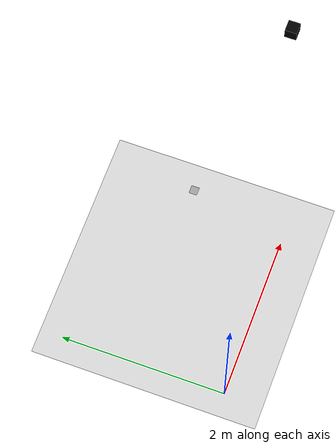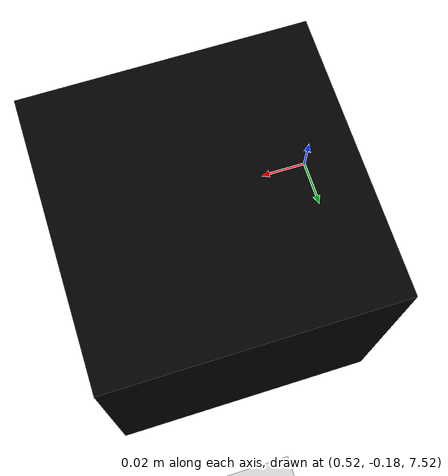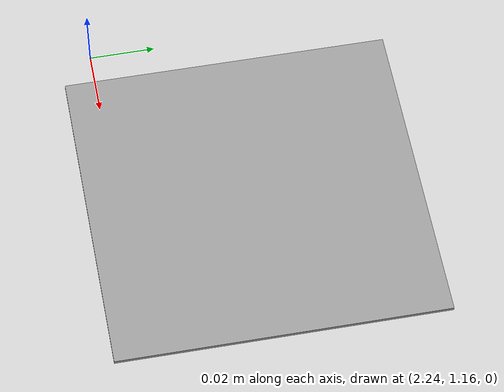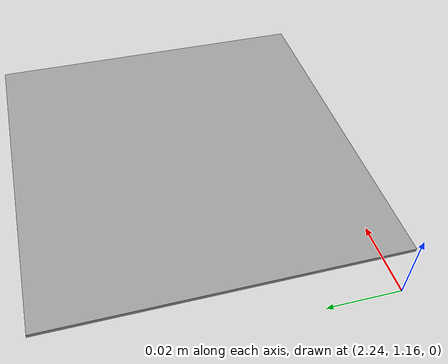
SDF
<?xml version="1.0"?>
<sdf version='1.7'>
  <world name='default'>
    <model name='ground_plane'>
      <static>1</static>
      <link name='link'>
        <collision name='collision'>
          <geometry>
            <plane>
              <normal>0 0 1</normal>
              <size>100 100</size>
            </plane>
          </geometry>
          <surface>
            <contact>
              <collide_bitmask>65535</collide_bitmask>
              <ode/>
            </contact>
            <friction>
              <ode>
                <mu>100</mu>
                <mu2>50</mu2>
              </ode>
              <torsional>
                <ode/>
              </torsional>
            </friction>
            <bounce/>
          </surface>
          <max_contacts>10</max_contacts>
        </collision>
        <visual name='visual'>
          <cast_shadows>0</cast_shadows>
          <geometry>
            <plane>
              <normal>0 0 1</normal>
              <size>100 100</size>
            </plane>
          </geometry>

          <material>
            <script>
              <uri>file://media/materials/scripts/gazebo.material</uri>
              <name>Gazebo/Grey</name>
            </script>
          </material>
        </visual>
        <self_collide>0</self_collide>
        <enable_wind>0</enable_wind>
        <kinematic>0</kinematic>
      </link>
    </model>

    <light name='sun' type='directional'>
      <cast_shadows>1</cast_shadows>
      <pose>0 3 10 0 -0 0</pose>
      <diffuse>0.8 0.8 0.8 1</diffuse>
      <specular>0.2 0.2 0.2 1</specular>
      <attenuation>
        <range>1000</range>
        <constant>0.9</constant>
        <linear>0.01</linear>
        <quadratic>0.001</quadratic>
      </attenuation>
      <direction>-0.5 0.1 -0.9</direction>
      <spot>
        <inner_angle>0</inner_angle>
        <outer_angle>0</outer_angle>
        <falloff>0</falloff>
      </spot>
    </light>
    <scene>
      <shadows>0</shadows>
      <ambient>0.4 0.4 0.4 1</ambient>
      <background>0.7 0.7 0.7 1</background>
    </scene>
    <gui fullscreen='0'>
      <camera name='user_camera'>
        <pose>2.34738 -5.85977 7.74484 0 0.845796 1.50125</pose>
        <view_controller>orbit</view_controller>
        <projection_type>perspective</projection_type>
      </camera>
    </gui>
    <physics type='ode'>
      <real_time_update_rate>1000</real_time_update_rate>
      <max_step_size>0.001</max_step_size>
      <real_time_factor>1</real_time_factor>
      <ode>
        <solver>
          <type>quick</type>
          <iters>150</iters>
          <precon_iters>0</precon_iters>
          <sor>1.4</sor>
          <use_dynamic_moi_rescaling>1</use_dynamic_moi_rescaling>
        </solver>
        <constraints>
          <cfm>1e-05</cfm>
          <erp>0.2</erp>
          <contact_max_correcting_vel>2000</contact_max_correcting_vel>
          <contact_surface_layer>0.01</contact_surface_layer>
        </constraints>
      </ode>
    </physics>
    <gravity>0 0 -9.8</gravity>
    <magnetic_field>6e-06 2.3e-05 -4.2e-05</magnetic_field>
    <atmosphere type='adiabatic'/>

    <model name='camera'>
      <pose>0.579863 -0.135785 7.58 -1.57079 1.57079 0.0</pose> <!-- camera rotation affects the localization orientation, ie object top left end up bottom right-->
      <velocity>0 0 0 0 -0 0</velocity>
      <acceleration>0 0 0 0 -0 0</acceleration>
      <wrench>0 0 0 0 -0 0</wrench>
      <static>1</static>
      <link name='link'>
        <inertial>
          <mass>0.1</mass>
          <inertia>
            <ixx>0.000166667</ixx>
            <iyy>0.000166667</iyy>
            <izz>0.000166667</izz>
            <ixy>0</ixy>
            <ixz>0</ixz>
            <iyz>0</iyz>
          </inertia>
        </inertial>
        <collision name='collision'>
          <geometry>
            <box>
              <size>0.1 0.1 0.1</size>
            </box>
          </geometry>
          <max_contacts>10</max_contacts>
          <surface>
            <contact>
              <ode/>
            </contact>
            <bounce/>
            <friction>
              <torsional>
                <ode/>
              </torsional>
              <ode/>
            </friction>
          </surface>
        </collision>
        <visual name='visual'>
          <geometry>
            <box>
              <size>0.1 0.1 0.1</size>
            </box>
          </geometry>
          <material>
            <ambient>0 0 0 1</ambient>
            <diffuse>0 0 0 1</diffuse>
            <specular>0 0 0 0</specular>
            <emissive>1 0 0 1</emissive>
          </material>
        </visual>
        <sensor name='camera' type='camera'>
          <camera>
            <horizontal_fov>0.934</horizontal_fov>
            <image>
              <width>1920</width>
              <height>1080</height>
            </image>
            <clip>
              <near>0.1</near>
              <far>100</far>
            </clip>
            <aspect_ratio>1.76</aspect_ratio>
          </camera>
          <plugin name='camera_controller' filename='libgazebo_ros_camera.so'/>
          <always_on>1</always_on>
          <update_rate>30</update_rate>
          <visualize>1</visualize>
        </sensor>
        <self_collide>0</self_collide>
        <enable_wind>0</enable_wind>
        <kinematic>0</kinematic>
      </link>
    </model>

    <!-- Includes Sin Wye Yuen maze, file located in models of package directory-->

    <!-- I dont think it is important, nothing seems to break-->

    <!-- My goal marker, change emissivity for different color-->
    <model name='Square_goal'>
      <link name='link_0'>
        <inertial>
          <mass>1</mass>
          <inertia>
            <ixx>0.166667</ixx>
            <ixy>0</ixy>
            <ixz>0</ixz>
            <iyy>0.166667</iyy>
            <iyz>0</iyz>
            <izz>0.166667</izz>
          </inertia>
          <pose>0 0 0 0 -0 0</pose>
        </inertial>
        <pose>-0 -0 0 0 -0 0</pose>
        <gravity>1</gravity>
        <self_collide>0</self_collide>
        <kinematic>0</kinematic>
        <enable_wind>0</enable_wind>
        <visual name='visual'>
          <pose>0 0 0 0 -0 0</pose>
          <geometry>
            <box>
              <size>0.1 0.1 0.001</size>
            </box>
          </geometry>
          <material>
            <lighting>1</lighting>
            <script>
              <uri>file://media/materials/scripts/gazebo.material</uri>
              <name>Gazebo/Grey</name>
            </script>
            <shader type='pixel'>
              <normal_map>__default__</normal_map>
            </shader>
            <ambient>0.3 0.3 0.3 1</ambient>
            <diffuse>0.7 0.7 0.7 1</diffuse>
            <specular>0.01 0.01 0.01 1</specular>
            <emissive>0 1 0 1</emissive>
          </material>
          <transparency>0</transparency>
          <cast_shadows>1</cast_shadows>
        </visual>
        <collision name='collision'>
          <laser_retro>0</laser_retro>
          <max_contacts>10</max_contacts>
          <pose>0 0 0 0 -0 0</pose>
          <geometry>
            <box>
              <size>0.1 0.1 0.001</size>
            </box>
          </geometry>
          <surface>
            <friction>
              <ode>
                <mu>1</mu>
                <mu2>1</mu2>
                <fdir1>0 0 0</fdir1>
                <slip1>0</slip1>
                <slip2>0</slip2>
              </ode>
              <torsional>
                <coefficient>1</coefficient>
                <patch_radius>0</patch_radius>
                <surface_radius>0</surface_radius>
                <use_patch_radius>1</use_patch_radius>
                <ode>
                  <slip>0</slip>
                </ode>
              </torsional>
            </friction>
            <bounce>
              <restitution_coefficient>0</restitution_coefficient>
              <threshold>1e+06</threshold>
            </bounce>
            <contact>
              <collide_without_contact>0</collide_without_contact>
              <collide_without_contact_bitmask>1</collide_without_contact_bitmask>
              <collide_bitmask>1</collide_bitmask>
              <ode>
                <soft_cfm>0</soft_cfm>
                <soft_erp>0.2</soft_erp>
                <kp>1e+13</kp>
                <kd>1</kd>
                <max_vel>0.01</max_vel>
                <min_depth>0</min_depth>
              </ode>
              <bullet>
                <split_impulse>1</split_impulse>
                <split_impulse_penetration_threshold>-0.01</split_impulse_penetration_threshold>
                <soft_cfm>0</soft_cfm>
                <soft_erp>0.2</soft_erp>
                <kp>1e+13</kp>
                <kd>1</kd>
              </bullet>
            </contact>
          </surface>
        </collision>
      </link>
      <static>0</static>
      <allow_auto_disable>1</allow_auto_disable>
      <pose>2.29996 1.20066 0.0005 0 -0 0</pose>
    </model>
  </world>
</sdf>
